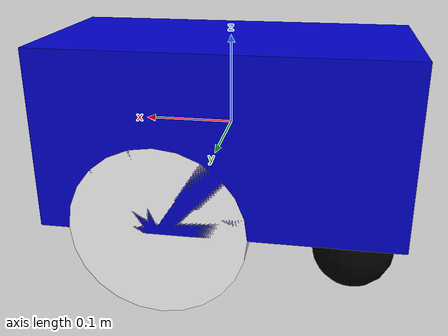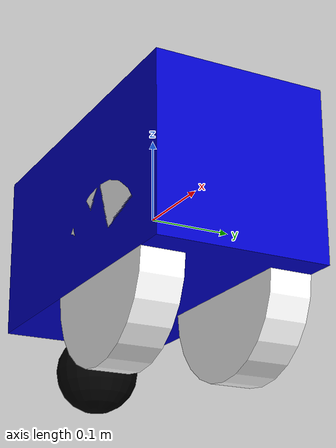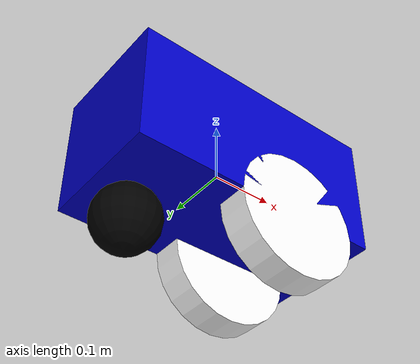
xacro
<?xml version="1.0"?>
<robot xmlns:xacro="http://www.ros.org/wiki/xacro" name="mobile_bot">

    <!-- Xacro properties -->
    <xacro:property name="body_len" value="0.4"/>
    <xacro:property name="body_width" value="0.2"/>
    <xacro:property name="body_height" value="0.2"/>
    <xacro:property name="wheel_diam" value="0.2"/>
    <xacro:property name="wheel_rad" value="${wheel_diam/2.0}"/>
    <xacro:property name="wheel_width" value="0.05"/>
    <xacro:property name="wheel_sep" value="${body_width - wheel_width}"/>

    <xacro:property name="pi" value="3.14159265359"/>

    <material name="blue">
        <color rgba="0 0 0.8 1"/>
    </material>

    <material name="black">
        <color rgba="0 0 0 1"/>
    </material>

    <material name="white">
        <color rgba="1 1 1 1"/>
    </material>

    <xacro:macro name="default_inertial" params="mass">
        <inertial>
            <mass value="${mass}"/>
            <inertia ixx="1.0" ixy="0.0" ixz="0.0"
                     iyy="1.0" iyz="0.0"
                     izz="1.0"/>
        </inertial>
    </xacro:macro>

    <!-- Robot base link -->
    <link name="base_link">
        <visual>
            <geometry>
                <box size="${body_len} ${body_width} ${body_height}"/>
            </geometry>
            <material name="blue"/>
        </visual>
        <collision>
            <geometry>
                <box size="${body_len} ${body_width} ${body_height}"/>
            </geometry>
        </collision>
        <xacro:default_inertial mass="20"/>
    </link>

    <!-- Wheel macro -->
    <xacro:macro name="wheel" params="prefix reflect">
        <link name="${prefix}_wheel">
            <visual>
                <geometry>
                    <cylinder radius="${wheel_rad}" length="${wheel_width}"/>
                </geometry>
                <material name="white"/>
            </visual>
            <collision>
                <geometry>
                    <cylinder radius="${wheel_rad}" length="${wheel_width}"/>
                </geometry>
            </collision>
            <xacro:default_inertial mass="1"/>
        </link>

        <joint name="${prefix}_wheel_joint" type="continuous">
            <axis xyz="0 0 1"/>
            <parent link="base_link"/>
            <child link="${prefix}_wheel"/>
            <origin xyz="${body_len/2.0 - body_len/3.0} ${reflect*wheel_sep/2.0} ${-wheel_rad}" rpy="${pi/2.0} 0 0"/>
            <limit effort="100" velocity="15"/>
            <joint_properties damping="0.0" friction="0.0"/>
        </joint>

        <gazebo reference="{prefix}_wheel">
            <mu1 value="200.0"/>
            <mu2 value="100.0"/>
            <kp value="10000000.0"/>
            <kd value="1.0"/>
            <material>Gazebo/Grey</material>
        </gazebo>

        <transmission name="${prefix}_wheel_trans">
            <type>transmission_interface/SimpleTransmission</type>
            <actuator name="${prefix}_wheel_motor">
                <mechanicalReduction>1</mechanicalReduction>
            </actuator>
            <joint name="${prefix}_wheel_joint">
                <hardwareInterface>hardware_interface/VelocityJointInterface</hardwareInterface>
            </joint>
        </transmission>

    </xacro:macro>

    <xacro:wheel prefix="left" reflect="1"/>
    <xacro:wheel prefix="right" reflect="-1"/>

    <!-- Front castor -->
    <link name="castor">
        <visual>
            <geometry>
                <sphere radius="${wheel_rad/2.0}"/>
            </geometry>
            <material name="black"/>
        </visual>
        <collision>
            <geometry>
                <sphere radius="${wheel_rad/2.0}"/>
            </geometry>
        </collision>
        <xacro:default_inertial mass="0.5"/>
    </link>

    <joint name="castor_joint" type="fixed">
        <parent link="base_link"/>
        <child link="castor"/>
        <origin xyz="${wheel_rad/2.0 - body_len/2.0} 0 ${-1.5*wheel_rad}" rpy="0 0 0"/>
    </joint>

    <gazebo reference="castor">
        <mu1 value="0.0"/>
        <mu2 value="0.0"/>
    </gazebo>

    <!-- Gazebo plugin for ROS Control -->
    <gazebo>
        <plugin name="gazebo_ros_control" filename="libgazebo_ros_control.so">
            <robotNamespace>/</robotNamespace>
        </plugin>
    </gazebo>

</robot>
